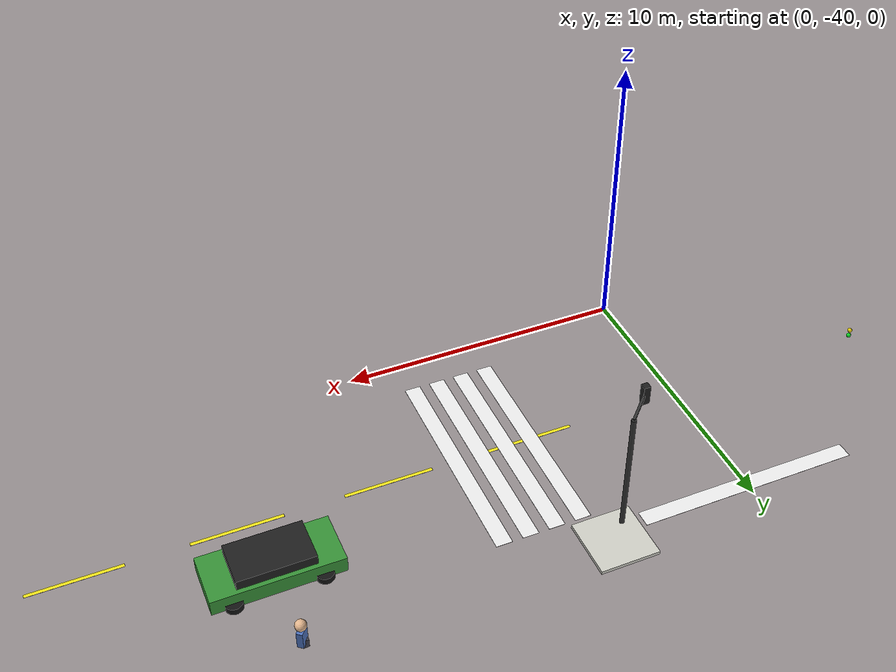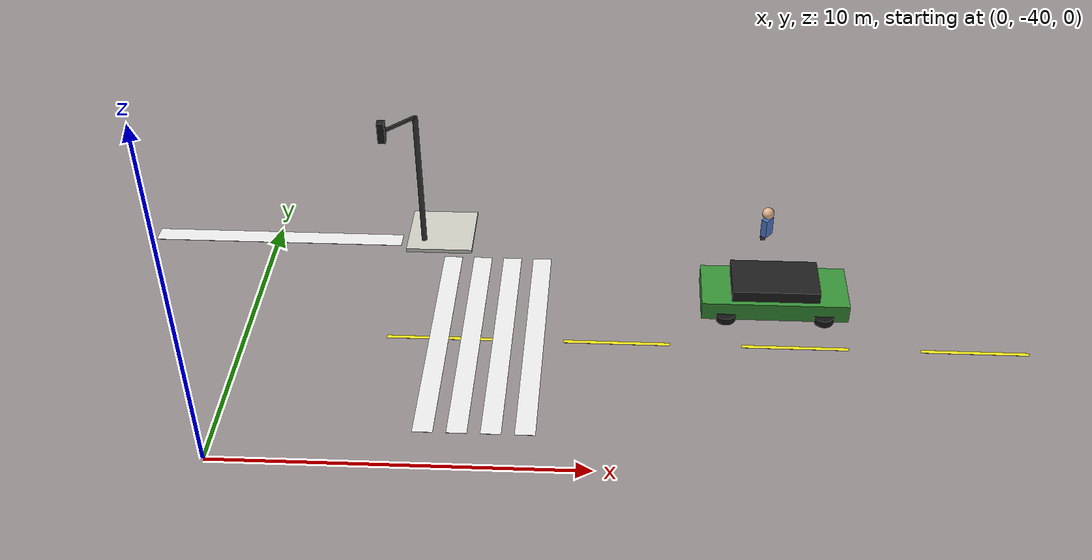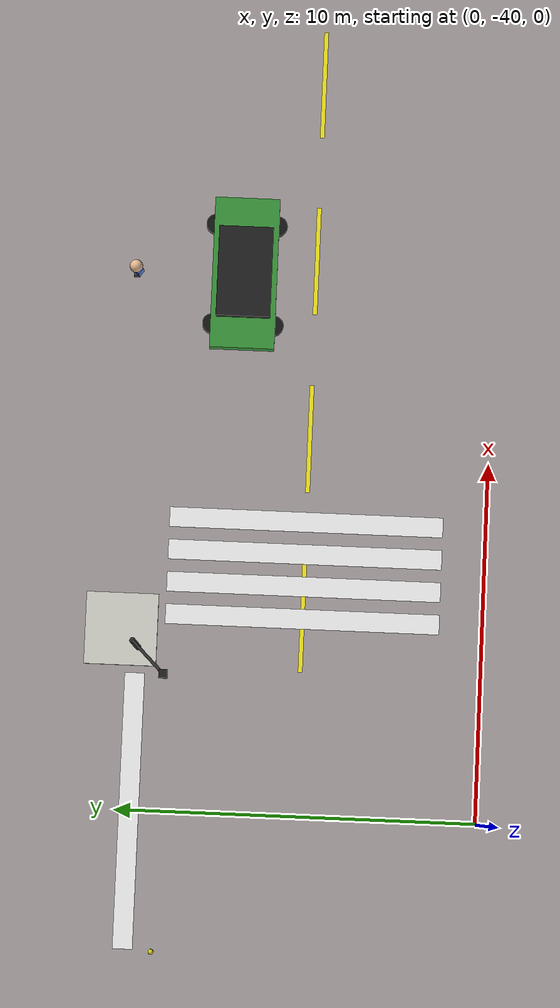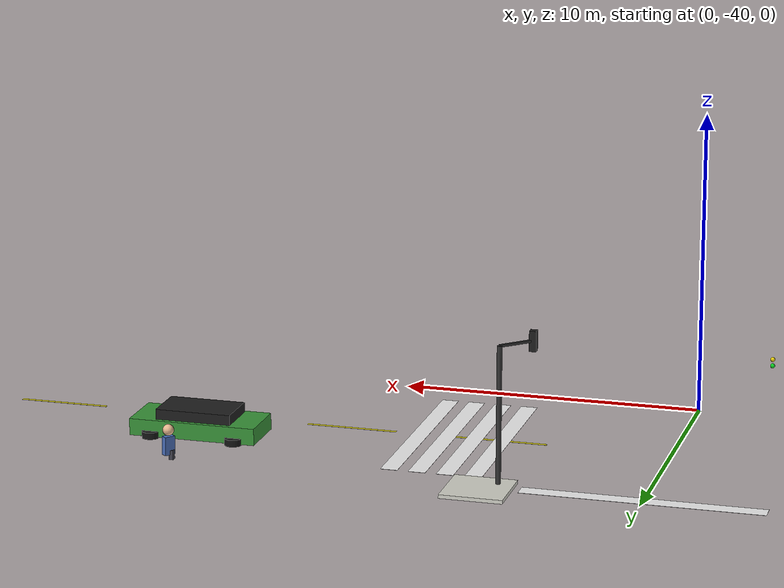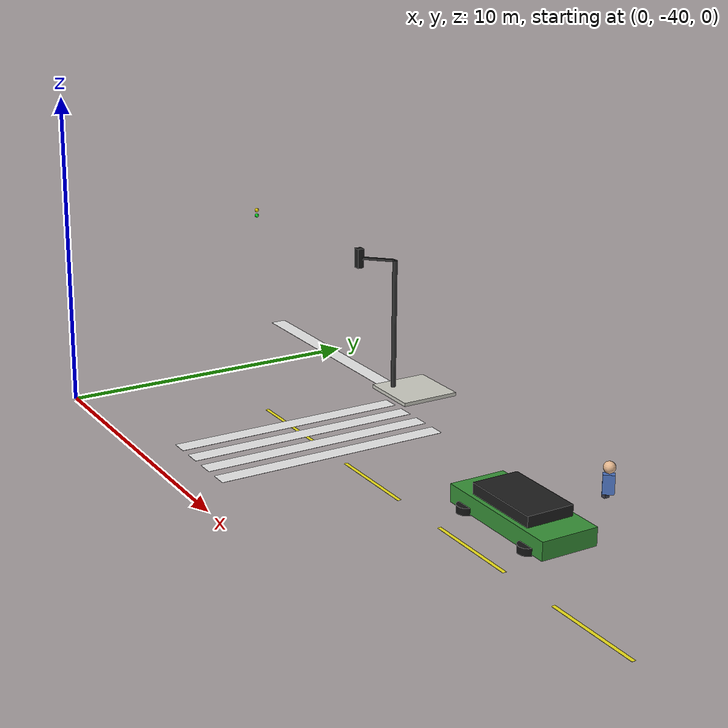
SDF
<sdf version="1.9">
 <world name="city">
  <model name="sw_corner_71">
   <static>true</static>
   <pose>5.0 -30.0 0.065 0 0 0</pose>
   <link name="l">
    <collision name="c"><geometry><box><size>2.0 2.0 0.12</size></box></geometry></collision>
    <visual name="v">
     <geometry><box><size>2.0 2.0 0.12</size></box></geometry>
     <material>
      <ambient>0.82 0.82 0.78 1</ambient>
      <diffuse>0.82 0.82 0.78 1</diffuse>
      <specular>0.04 0.04 0.04 1</specular>
     </material>
    </visual>
   </link>
  </model>
  <model name="cw_n_153">
   <static>true</static>
   <pose>0.0 -30.425 0.013000000000000001 0 0 0</pose>
   <link name="l">
    <visual name="v">
     <geometry><box><size>7.6 0.55 0.005</size></box></geometry>
     <material>
      <ambient>0.94 0.94 0.94 1</ambient>
      <diffuse>0.94 0.94 0.94 1</diffuse>
      <specular>0.04 0.04 0.04 1</specular>
     </material>
    </visual>
   </link>
  </model>
  <model name="cw_e_159">
   <static>true</static>
   <pose>5.475 -35.0 0.013000000000000001 0 0 0</pose>
   <link name="l">
    <visual name="v">
     <geometry><box><size>0.55 7.6 0.005</size></box></geometry>
     <material>
      <ambient>0.94 0.94 0.94 1</ambient>
      <diffuse>0.94 0.94 0.94 1</diffuse>
      <specular>0.04 0.04 0.04 1</specular>
     </material>
    </visual>
   </link>
  </model>
  <model name="cw_e_163">
   <static>true</static>
   <pose>6.375 -35.0 0.013000000000000001 0 0 0</pose>
   <link name="l">
    <visual name="v">
     <geometry><box><size>0.55 7.6 0.005</size></box></geometry>
     <material>
      <ambient>0.94 0.94 0.94 1</ambient>
      <diffuse>0.94 0.94 0.94 1</diffuse>
      <specular>0.04 0.04 0.04 1</specular>
     </material>
    </visual>
   </link>
  </model>
  <model name="cw_e_167">
   <static>true</static>
   <pose>7.275 -35.0 0.013000000000000001 0 0 0</pose>
   <link name="l">
    <visual name="v">
     <geometry><box><size>0.55 7.6 0.005</size></box></geometry>
     <material>
      <ambient>0.94 0.94 0.94 1</ambient>
      <diffuse>0.94 0.94 0.94 1</diffuse>
      <specular>0.04 0.04 0.04 1</specular>
     </material>
    </visual>
   </link>
  </model>
  <model name="cw_e_171">
   <static>true</static>
   <pose>8.175 -35.0 0.013000000000000001 0 0 0</pose>
   <link name="l">
    <visual name="v">
     <geometry><box><size>0.55 7.6 0.005</size></box></geometry>
     <material>
      <ambient>0.94 0.94 0.94 1</ambient>
      <diffuse>0.94 0.94 0.94 1</diffuse>
      <specular>0.04 0.04 0.04 1</specular>
     </material>
    </visual>
   </link>
  </model>
  <model name="dash_349">
   <static>true</static>
   <pose>5.5 -35.0 0.012 0 0 0</pose>
   <link name="l">
    <visual name="v">
     <geometry><box><size>3.0 0.12 0.003</size></box></geometry>
     <material>
      <ambient>0.95 0.9 0.1 1</ambient>
      <diffuse>0.95 0.9 0.1 1</diffuse>
      <specular>0.04 0.04 0.04 1</specular>
     </material>
    </visual>
   </link>
  </model>
  <model name="dash_350">
   <static>true</static>
   <pose>10.5 -35.0 0.012 0 0 0</pose>
   <link name="l">
    <visual name="v">
     <geometry><box><size>3.0 0.12 0.003</size></box></geometry>
     <material>
      <ambient>0.95 0.9 0.1 1</ambient>
      <diffuse>0.95 0.9 0.1 1</diffuse>
      <specular>0.04 0.04 0.04 1</specular>
     </material>
    </visual>
   </link>
  </model>
  <model name="dash_351">
   <static>true</static>
   <pose>15.5 -35.0 0.012 0 0 0</pose>
   <link name="l">
    <visual name="v">
     <geometry><box><size>3.0 0.12 0.003</size></box></geometry>
     <material>
      <ambient>0.95 0.9 0.1 1</ambient>
      <diffuse>0.95 0.9 0.1 1</diffuse>
      <specular>0.04 0.04 0.04 1</specular>
     </material>
    </visual>
   </link>
  </model>
  <model name="dash_352">
   <static>true</static>
   <pose>20.5 -35.0 0.012 0 0 0</pose>
   <link name="l">
    <visual name="v">
     <geometry><box><size>3.0 0.12 0.003</size></box></geometry>
     <material>
      <ambient>0.95 0.9 0.1 1</ambient>
      <diffuse>0.95 0.9 0.1 1</diffuse>
      <specular>0.04 0.04 0.04 1</specular>
     </material>
    </visual>
   </link>
  </model>
  <model name="rcar9_b_564">
   <static>true</static>
   <pose>15 -33.0 0.358 0 0 1.5708</pose>
   <link name="l">
    <collision name="c"><geometry><box><size>1.8 4.2 0.55</size></box></geometry></collision>
    <visual name="v">
     <geometry><box><size>1.8 4.2 0.55</size></box></geometry>
     <material>
      <ambient>0.22 0.58 0.22 1</ambient>
      <diffuse>0.22 0.58 0.22 1</diffuse>
      <specular>0.04 0.04 0.04 1</specular>
     </material>
    </visual>
   </link>
  </model>
  <model name="rcar9_r_565">
   <static>true</static>
   <pose>15 -33.0 0.778 0 0 1.5708</pose>
   <link name="l">
    <collision name="c"><geometry><box><size>1.5 2.5 0.38</size></box></geometry></collision>
    <visual name="v">
     <geometry><box><size>1.5 2.5 0.38</size></box></geometry>
     <material>
      <ambient>0.12 0.12 0.12 1</ambient>
      <diffuse>0.12 0.12 0.12 1</diffuse>
      <specular>0.04 0.04 0.04 1</specular>
     </material>
    </visual>
   </link>
  </model>
  <model name="rcar9_w_566">
   <static>true</static>
   <pose>16.400003122214894 -33.84999485750712 0.158 0 0 3.1416</pose>
   <link name="l">
    <visual name="v">
     <geometry><cylinder><radius>0.28</radius><length>0.22</length></cylinder></geometry>
     <material><ambient>0.08 0.08 0.08 1</ambient><diffuse>0.08 0.08 0.08 1</diffuse></material>
    </visual>
   </link>
  </model>
  <model name="rcar9_w_567">
   <static>true</static>
   <pose>16.399996877766217 -32.149994857518585 0.158 0 0 3.1416</pose>
   <link name="l">
    <visual name="v">
     <geometry><cylinder><radius>0.28</radius><length>0.22</length></cylinder></geometry>
     <material><ambient>0.08 0.08 0.08 1</ambient><diffuse>0.08 0.08 0.08 1</diffuse></material>
    </visual>
   </link>
  </model>
  <model name="rcar9_w_568">
   <static>true</static>
   <pose>13.600003122233783 -33.850005142481415 0.158 0 0 3.1416</pose>
   <link name="l">
    <visual name="v">
     <geometry><cylinder><radius>0.28</radius><length>0.22</length></cylinder></geometry>
     <material><ambient>0.08 0.08 0.08 1</ambient><diffuse>0.08 0.08 0.08 1</diffuse></material>
    </visual>
   </link>
  </model>
  <model name="rcar9_w_569">
   <static>true</static>
   <pose>13.599996877785106 -32.15000514249288 0.158 0 0 3.1416</pose>
   <link name="l">
    <visual name="v">
     <geometry><cylinder><radius>0.28</radius><length>0.22</length></cylinder></geometry>
     <material><ambient>0.08 0.08 0.08 1</ambient><diffuse>0.08 0.08 0.08 1</diffuse></material>
    </visual>
   </link>
  </model>
  <model name="ped20_t_650">
   <static>true</static>
   <pose>15 -30.0 0.575 0 0 0.879999999999999</pose>
   <link name="l">
    <collision name="c"><geometry><box><size>0.35 0.2 0.6</size></box></geometry></collision>
    <visual name="v">
     <geometry><box><size>0.35 0.2 0.6</size></box></geometry>
     <material>
      <ambient>0.3 0.45 0.75 1</ambient>
      <diffuse>0.3 0.45 0.75 1</diffuse>
      <specular>0.04 0.04 0.04 1</specular>
     </material>
    </visual>
   </link>
  </model>
  <model name="ped20_h_651">
   <static>true</static>
   <pose>15 -30.0 1.075 0 0 0</pose>
   <link name="l">
    <visual name="v">
     <geometry><sphere><radius>0.18</radius></sphere></geometry>
     <material><ambient>0.9 0.72 0.56 1</ambient><diffuse>0.9 0.72 0.56 1</diffuse></material>
    </visual>
   </link>
  </model>
  <model name="ped20_l-0.1_652">
   <static>true</static>
   <pose>14.9 -30.0 0.275 0 0 0</pose>
   <link name="l">
    <collision name="c"><geometry><box><size>0.14 0.16 0.3</size></box></geometry></collision>
    <visual name="v">
     <geometry><box><size>0.14 0.16 0.3</size></box></geometry>
     <material>
      <ambient>0.25 0.25 0.3 1</ambient>
      <diffuse>0.25 0.25 0.3 1</diffuse>
      <specular>0.04 0.04 0.04 1</specular>
     </material>
    </visual>
   </link>
  </model>
  <model name="tl_0_-35_2_l1_778">
   <static>true</static>
   <pose>-3.6511340769993605 -31.34819021732644 4.505 0 0 0</pose>
   <link name="l">
    <visual name="v">
     <geometry><sphere><radius>0.07</radius></sphere></geometry>
     <material><ambient>0.9 0.8 0.05 1</ambient><diffuse>0.9 0.8 0.05 1</diffuse></material>
    </visual>
   </link>
  </model>
  <model name="tl_0_-35_2_l2_779">
   <static>true</static>
   <pose>-3.6511340769993605 -31.34819021732644 4.305 0 0 0</pose>
   <link name="l">
    <visual name="v">
     <geometry><sphere><radius>0.07</radius></sphere></geometry>
     <material><ambient>0.05 0.85 0.15 1</ambient><diffuse>0.05 0.85 0.15 1</diffuse></material>
    </visual>
   </link>
  </model>
  <model name="tl_0_-35_3_pole_780">
   <static>true</static>
   <pose>4.5 -30.5 2.255 0 0 0</pose>
   <link name="l">
    <collision name="c">
     <geometry><cylinder><radius>0.08</radius><length>4.5</length></cylinder></geometry>
    </collision>
    <visual name="v">
     <geometry><cylinder><radius>0.08</radius><length>4.5</length></cylinder></geometry>
     <material><ambient>0.2 0.2 0.2 1</ambient><diffuse>0.2 0.2 0.2 1</diffuse></material>
    </visual>
   </link>
  </model>
  <model name="tl_0_-35_3_arm_781">
   <static>true</static>
   <pose>4.075818454512079 -30.92434657588754 4.505 0 0 -2.356</pose>
   <link name="l">
    <collision name="c"><geometry><box><size>1.2 0.08 0.08</size></box></geometry></collision>
    <visual name="v">
     <geometry><box><size>1.2 0.08 0.08</size></box></geometry>
     <material>
      <ambient>0.2 0.2 0.2 1</ambient>
      <diffuse>0.2 0.2 0.2 1</diffuse>
      <specular>0.04 0.04 0.04 1</specular>
     </material>
    </visual>
   </link>
  </model>
  <model name="tl_0_-35_3_hous_782">
   <static>true</static>
   <pose>3.6516369090241576 -31.348693151775077 4.505 0 0 0</pose>
   <link name="l">
    <collision name="c"><geometry><box><size>0.22 0.22 0.65</size></box></geometry></collision>
    <visual name="v">
     <geometry><box><size>0.22 0.22 0.65</size></box></geometry>
     <material>
      <ambient>0.12 0.12 0.12 1</ambient>
      <diffuse>0.12 0.12 0.12 1</diffuse>
      <specular>0.04 0.04 0.04 1</specular>
     </material>
    </visual>
   </link>
  </model>
  <model name="tl_0_-35_3_l0_783">
   <static>true</static>
   <pose>3.6516369090241576 -31.348693151775077 4.705 0 0 0</pose>
   <link name="l">
    <visual name="v">
     <geometry><sphere><radius>0.07</radius></sphere></geometry>
     <material><ambient>0.95 0.08 0.08 1</ambient><diffuse>0.95 0.08 0.08 1</diffuse></material>
    </visual>
   </link>
  </model>
  <model name="tl_0_-35_3_l1_784">
   <static>true</static>
   <pose>3.6516369090241576 -31.348693151775077 4.505 0 0 0</pose>
   <link name="l">
    <visual name="v">
     <geometry><sphere><radius>0.07</radius></sphere></geometry>
     <material><ambient>0.9 0.8 0.05 1</ambient><diffuse>0.9 0.8 0.05 1</diffuse></material>
    </visual>
   </link>
  </model>
  <model name="tl_0_-35_3_l2_785">
   <static>true</static>
   <pose>3.6516369090241576 -31.348693151775077 4.305 0 0 0</pose>
   <link name="l">
    <visual name="v">
     <geometry><sphere><radius>0.07</radius></sphere></geometry>
     <material><ambient>0.05 0.85 0.15 1</ambient><diffuse>0.05 0.85 0.15 1</diffuse></material>
    </visual>
   </link>
  </model>
 </world>
</sdf>
